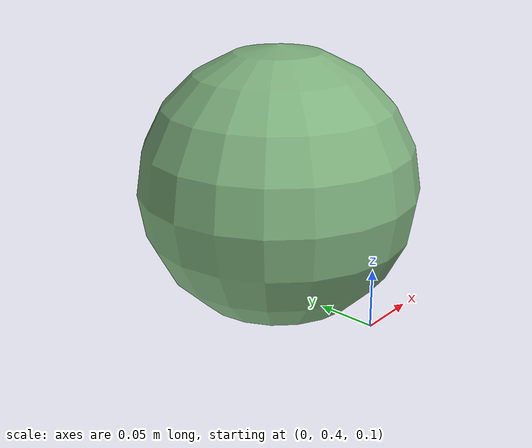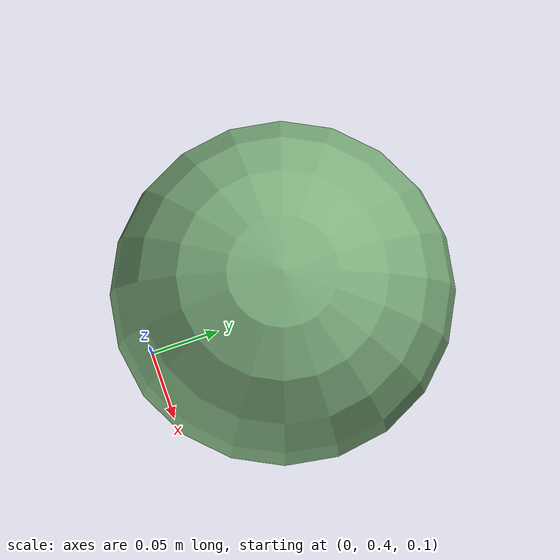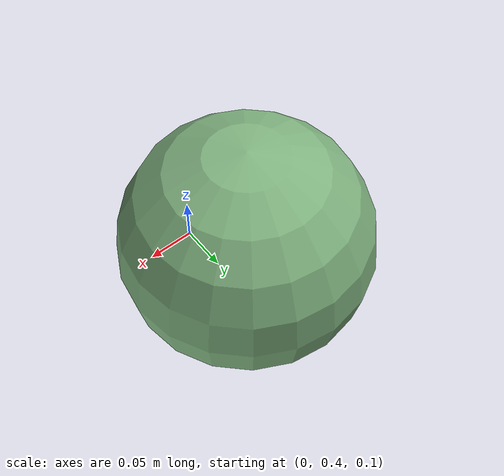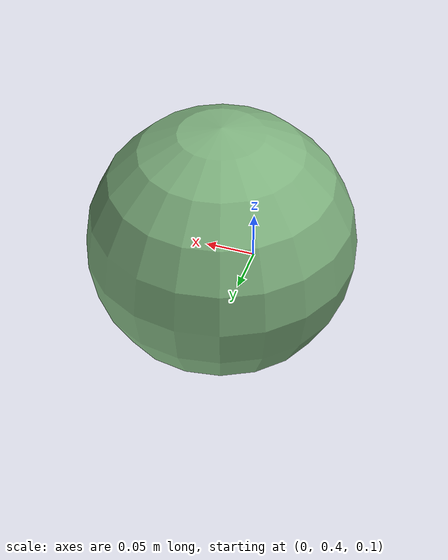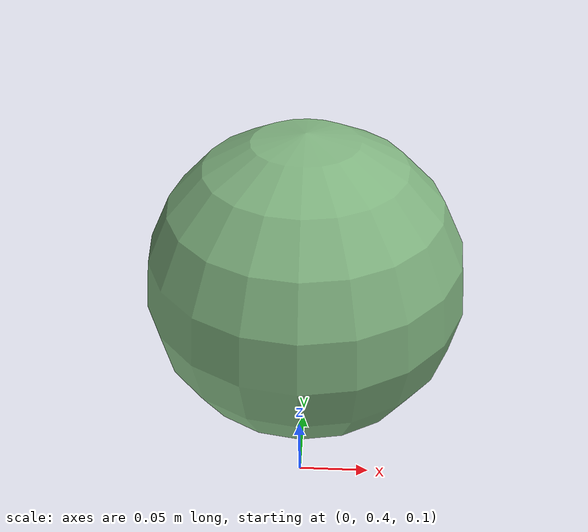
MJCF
<mujoco model="basketball_s5">

  <asset>
    <texture name="bb_texture" type="2d" file="basketball.png"/>
    <material name="bb_material" texture="bb_texture" specular="0.25" shininess="0.6" reflectance="0.1"/>
  </asset>

  <worldbody>

    <body name="basketball" pos="0.0 0.5 0.2">
      <freejoint/>
      <geom type="sphere" size="0.12" rgba="0.5 0.7 0.5 1" material="bb_material" />
      <inertial mass="0.624" pos="0 0 0.0" diaginertia="0.00354 0.00354 0.00354"/>
    </body>
  </worldbody>
</mujoco>
